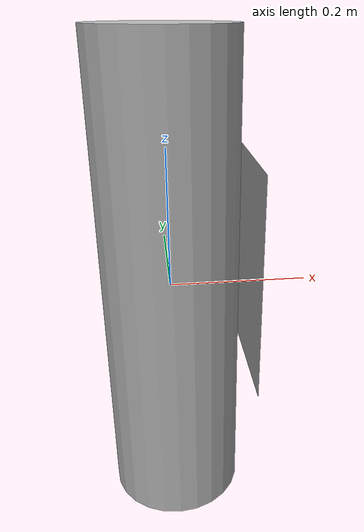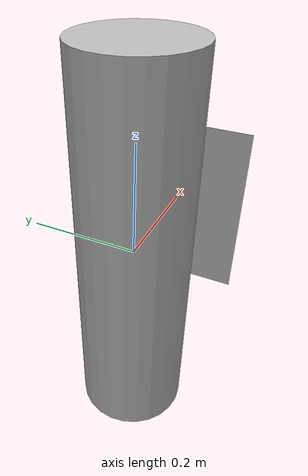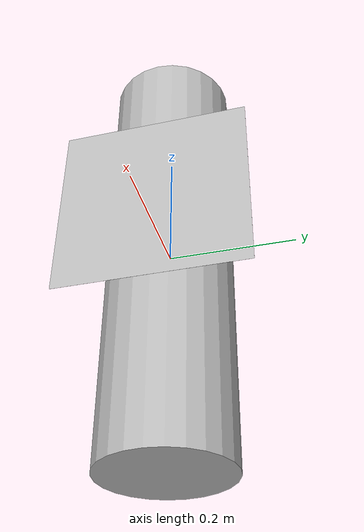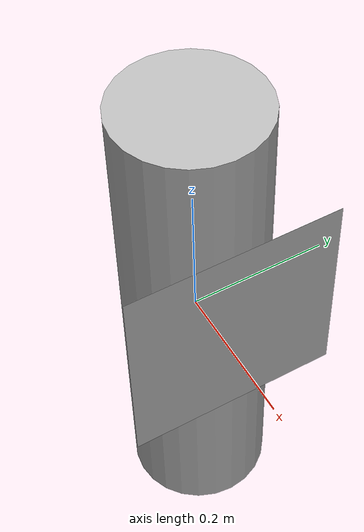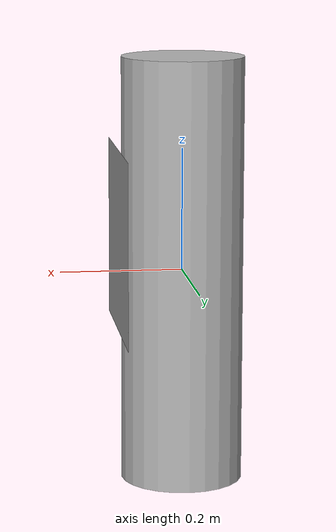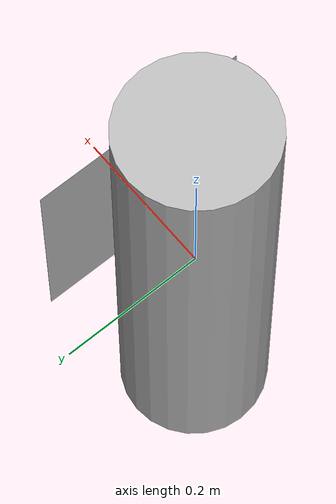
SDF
<?xml version="1.0"?>
<sdf version="1.6">
  <model name="aruco_marker">
    <link name="link">
      <inertial>
        <pose>0 0 0 0 0 0</pose>
        <mass>1</mass>
        <inertia>
          <ixx>0.083</ixx>
          <ixy>0.0</ixy>
          <ixz>0.0</ixz>
          <iyy>0.083</iyy>
          <iyz>0.0</iyz>
          <izz>0.083</izz>
        </inertia>
      </inertial>
      <visual name="front_visual">
        <pose>0.105 0 0.05 0 0 0</pose>
        <geometry>
          <box>
            <size>0.0001 0.30 0.30</size>
          </box>
        </geometry>
        <material>
          <script>
            <uri>model://aruco_marker_cylinder/materials/scripts</uri>
            <uri>model://aruco_marker_cylinder/materials/textures</uri>
            <name>Marker2</name>
          </script>
        </material>
      </visual>
      <!-- Hide the marker from the back -->
      <visual name="rear_visual">
        <pose>0 0 0 0 0 0</pose>
        <geometry>
            <cylinder>
              <radius>0.1</radius>
              <length> 0.7 </length>
            </cylinder>
        </geometry>
      </visual>
      <collision name="collision">
        <pose>0 0 0 0 0 0</pose>
        <geometry>
            <cylinder>
              <radius>0.1</radius>
              <length>0.7</length>
            </cylinder>
        </geometry>
      </collision>
    </link>
  </model>
</sdf>
เขียนถึง วรเมธี จิตนากร
